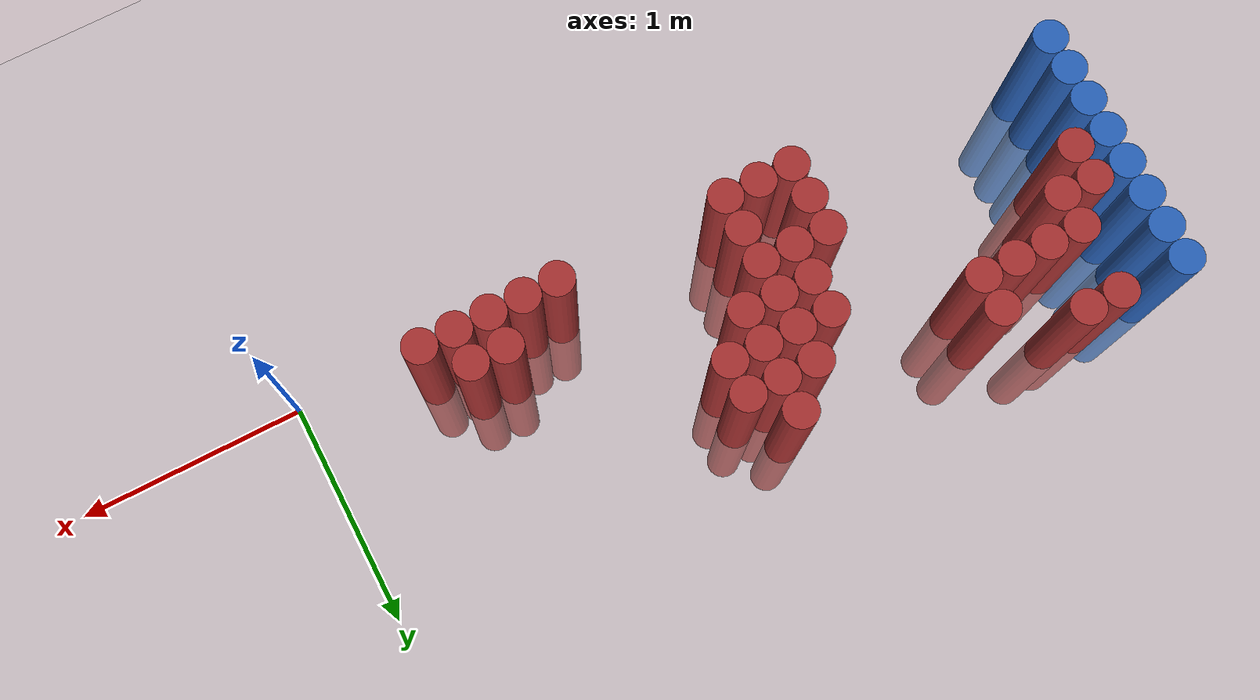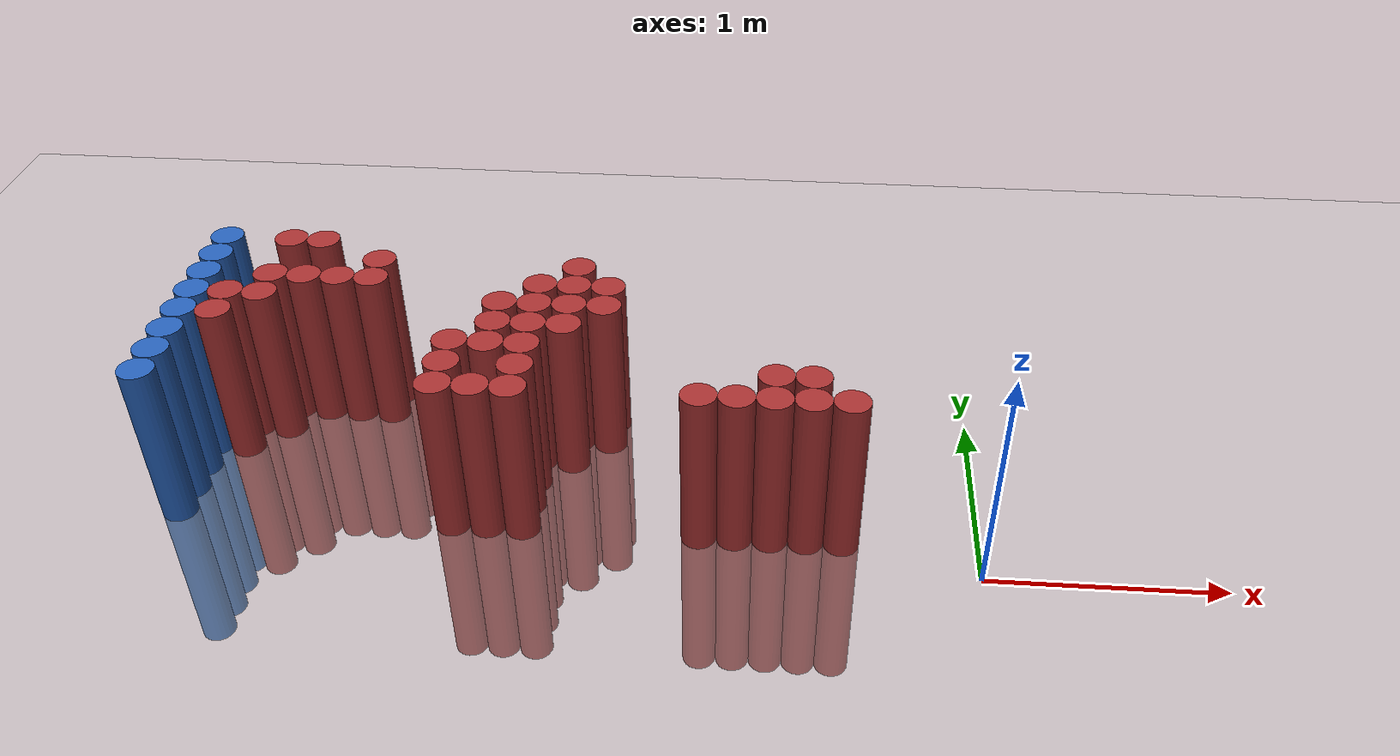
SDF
<sdf version="1.6">
 <world name="default">
  <model name="ground_plane">
   <static>1</static>
   <link name="link">
    <collision name="collision">
     <geometry><plane><normal>0 0 1</normal><size>100 100</size></plane></geometry>
     <surface><friction><ode><mu>100</mu><mu2>50</mu2></ode></friction></surface>
    </collision>
    <visual name="visual">
     <cast_shadows>0</cast_shadows>
     <geometry><plane><normal>0 0 1</normal><size>100 100</size></plane></geometry>
     <material>
      <script><uri>file://media/materials/scripts/gazebo.material</uri><name>Gazebo/Grey</name></script>
     </material>
    </visual>
   </link>
  </model>
  <model name="unit_cylinder_119">
   <static>1</static>
   <pose>-3.425000 0.325000 0.000000 0.000000 0.000000 0.000000</pose>
   <link name="link">
    <inertial>
     <mass>1</mass>
     <inertia><ixx>0.145833</ixx><ixy>0</ixy><ixz>0</ixz><iyy>0.145833</iyy><iyz>0</iyz><izz>0.125</izz></inertia>
    </inertial>
    <collision name="collision">
     <geometry><cylinder><radius>0.075000</radius><length>1.5</length></cylinder></geometry>
    </collision>
    <visual name="visual">
     <geometry><cylinder><radius>0.075000</radius><length>1.5</length></cylinder></geometry>
     <material>
      <ambient>0.152000 0.379000 0.720000 1</ambient>
      <diffuse>0.152000 0.379000 0.720000 1</diffuse>
     </material>
     <material>
      <script><name>Gazebo/Grey</name><uri>file://media/materials/scripts/gazebo.material</uri></script>
     </material>
    </visual>
   </link>
  </model>
  <model name="unit_cylinder_121">
   <static>1</static>
   <pose>-3.425000 0.475000 0.000000 0.000000 0.000000 0.000000</pose>
   <link name="link">
    <inertial>
     <mass>1</mass>
     <inertia><ixx>0.145833</ixx><ixy>0</ixy><ixz>0</ixz><iyy>0.145833</iyy><iyz>0</iyz><izz>0.125</izz></inertia>
    </inertial>
    <collision name="collision">
     <geometry><cylinder><radius>0.075000</radius><length>1.5</length></cylinder></geometry>
    </collision>
    <visual name="visual">
     <geometry><cylinder><radius>0.075000</radius><length>1.5</length></cylinder></geometry>
     <material>
      <ambient>0.152000 0.379000 0.720000 1</ambient>
      <diffuse>0.152000 0.379000 0.720000 1</diffuse>
     </material>
     <material>
      <script><name>Gazebo/Grey</name><uri>file://media/materials/scripts/gazebo.material</uri></script>
     </material>
    </visual>
   </link>
  </model>
  <model name="unit_cylinder_123">
   <static>1</static>
   <pose>-3.425000 0.625000 0.000000 0.000000 0.000000 0.000000</pose>
   <link name="link">
    <inertial>
     <mass>1</mass>
     <inertia><ixx>0.145833</ixx><ixy>0</ixy><ixz>0</ixz><iyy>0.145833</iyy><iyz>0</iyz><izz>0.125</izz></inertia>
    </inertial>
    <collision name="collision">
     <geometry><cylinder><radius>0.075000</radius><length>1.5</length></cylinder></geometry>
    </collision>
    <visual name="visual">
     <geometry><cylinder><radius>0.075000</radius><length>1.5</length></cylinder></geometry>
     <material>
      <ambient>0.152000 0.379000 0.720000 1</ambient>
      <diffuse>0.152000 0.379000 0.720000 1</diffuse>
     </material>
     <material>
      <script><name>Gazebo/Grey</name><uri>file://media/materials/scripts/gazebo.material</uri></script>
     </material>
    </visual>
   </link>
  </model>
  <model name="unit_cylinder_125">
   <static>1</static>
   <pose>-3.425000 0.775000 0.000000 0.000000 0.000000 0.000000</pose>
   <link name="link">
    <inertial>
     <mass>1</mass>
     <inertia><ixx>0.145833</ixx><ixy>0</ixy><ixz>0</ixz><iyy>0.145833</iyy><iyz>0</iyz><izz>0.125</izz></inertia>
    </inertial>
    <collision name="collision">
     <geometry><cylinder><radius>0.075000</radius><length>1.5</length></cylinder></geometry>
    </collision>
    <visual name="visual">
     <geometry><cylinder><radius>0.075000</radius><length>1.5</length></cylinder></geometry>
     <material>
      <ambient>0.152000 0.379000 0.720000 1</ambient>
      <diffuse>0.152000 0.379000 0.720000 1</diffuse>
     </material>
     <material>
      <script><name>Gazebo/Grey</name><uri>file://media/materials/scripts/gazebo.material</uri></script>
     </material>
    </visual>
   </link>
  </model>
  <model name="unit_cylinder_127">
   <static>1</static>
   <pose>-3.425000 0.925000 0.000000 0.000000 0.000000 0.000000</pose>
   <link name="link">
    <inertial>
     <mass>1</mass>
     <inertia><ixx>0.145833</ixx><ixy>0</ixy><ixz>0</ixz><iyy>0.145833</iyy><iyz>0</iyz><izz>0.125</izz></inertia>
    </inertial>
    <collision name="collision">
     <geometry><cylinder><radius>0.075000</radius><length>1.5</length></cylinder></geometry>
    </collision>
    <visual name="visual">
     <geometry><cylinder><radius>0.075000</radius><length>1.5</length></cylinder></geometry>
     <material>
      <ambient>0.152000 0.379000 0.720000 1</ambient>
      <diffuse>0.152000 0.379000 0.720000 1</diffuse>
     </material>
     <material>
      <script><name>Gazebo/Grey</name><uri>file://media/materials/scripts/gazebo.material</uri></script>
     </material>
    </visual>
   </link>
  </model>
  <model name="unit_cylinder_129">
   <static>1</static>
   <pose>-3.425000 1.075000 0.000000 0.000000 0.000000 0.000000</pose>
   <link name="link">
    <inertial>
     <mass>1</mass>
     <inertia><ixx>0.145833</ixx><ixy>0</ixy><ixz>0</ixz><iyy>0.145833</iyy><iyz>0</iyz><izz>0.125</izz></inertia>
    </inertial>
    <collision name="collision">
     <geometry><cylinder><radius>0.075000</radius><length>1.5</length></cylinder></geometry>
    </collision>
    <visual name="visual">
     <geometry><cylinder><radius>0.075000</radius><length>1.5</length></cylinder></geometry>
     <material>
      <ambient>0.152000 0.379000 0.720000 1</ambient>
      <diffuse>0.152000 0.379000 0.720000 1</diffuse>
     </material>
     <material>
      <script><name>Gazebo/Grey</name><uri>file://media/materials/scripts/gazebo.material</uri></script>
     </material>
    </visual>
   </link>
  </model>
  <model name="unit_cylinder_131">
   <static>1</static>
   <pose>-3.425000 1.225000 0.000000 0.000000 0.000000 0.000000</pose>
   <link name="link">
    <inertial>
     <mass>1</mass>
     <inertia><ixx>0.145833</ixx><ixy>0</ixy><ixz>0</ixz><iyy>0.145833</iyy><iyz>0</iyz><izz>0.125</izz></inertia>
    </inertial>
    <collision name="collision">
     <geometry><cylinder><radius>0.075000</radius><length>1.5</length></cylinder></geometry>
    </collision>
    <visual name="visual">
     <geometry><cylinder><radius>0.075000</radius><length>1.5</length></cylinder></geometry>
     <material>
      <ambient>0.152000 0.379000 0.720000 1</ambient>
      <diffuse>0.152000 0.379000 0.720000 1</diffuse>
     </material>
     <material>
      <script><name>Gazebo/Grey</name><uri>file://media/materials/scripts/gazebo.material</uri></script>
     </material>
    </visual>
   </link>
  </model>
  <model name="unit_cylinder_222">
   <static>1</static>
   <pose>-3.425000 0.175000 0.000000 0.000000 0.000000 0.000000</pose>
   <link name="link">
    <inertial>
     <mass>1</mass>
     <inertia><ixx>0.145833</ixx><ixy>0</ixy><ixz>0</ixz><iyy>0.145833</iyy><iyz>0</iyz><izz>0.125</izz></inertia>
    </inertial>
    <collision name="collision">
     <geometry><cylinder><radius>0.075000</radius><length>1.5</length></cylinder></geometry>
    </collision>
    <visual name="visual">
     <geometry><cylinder><radius>0.075000</radius><length>1.5</length></cylinder></geometry>
     <material>
      <ambient>0.152000 0.379000 0.720000 1</ambient>
      <diffuse>0.152000 0.379000 0.720000 1</diffuse>
     </material>
     <material>
      <script><name>Gazebo/Grey</name><uri>file://media/materials/scripts/gazebo.material</uri></script>
     </material>
    </visual>
   </link>
  </model>
  <model name="unit_cylinder_223">
   <static>1</static>
   <pose>-3.425000 0.325000 0.000000 0.000000 0.000000 0.000000</pose>
   <link name="link">
    <inertial>
     <mass>1</mass>
     <inertia><ixx>0.145833</ixx><ixy>0</ixy><ixz>0</ixz><iyy>0.145833</iyy><iyz>0</iyz><izz>0.125</izz></inertia>
    </inertial>
    <collision name="collision">
     <geometry><cylinder><radius>0.075000</radius><length>1.5</length></cylinder></geometry>
    </collision>
    <visual name="visual">
     <geometry><cylinder><radius>0.075000</radius><length>1.5</length></cylinder></geometry>
     <material>
      <ambient>0.152000 0.379000 0.720000 1</ambient>
      <diffuse>0.152000 0.379000 0.720000 1</diffuse>
     </material>
     <material>
      <script><name>Gazebo/Grey</name><uri>file://media/materials/scripts/gazebo.material</uri></script>
     </material>
    </visual>
   </link>
  </model>
  <model name="unit_cylinder_224">
   <static>1</static>
   <pose>-3.425000 0.475000 0.000000 0.000000 0.000000 0.000000</pose>
   <link name="link">
    <inertial>
     <mass>1</mass>
     <inertia><ixx>0.145833</ixx><ixy>0</ixy><ixz>0</ixz><iyy>0.145833</iyy><iyz>0</iyz><izz>0.125</izz></inertia>
    </inertial>
    <collision name="collision">
     <geometry><cylinder><radius>0.075000</radius><length>1.5</length></cylinder></geometry>
    </collision>
    <visual name="visual">
     <geometry><cylinder><radius>0.075000</radius><length>1.5</length></cylinder></geometry>
     <material>
      <ambient>0.152000 0.379000 0.720000 1</ambient>
      <diffuse>0.152000 0.379000 0.720000 1</diffuse>
     </material>
     <material>
      <script><name>Gazebo/Grey</name><uri>file://media/materials/scripts/gazebo.material</uri></script>
     </material>
    </visual>
   </link>
  </model>
  <model name="unit_cylinder_225">
   <static>1</static>
   <pose>-3.425000 0.625000 0.000000 0.000000 0.000000 0.000000</pose>
   <link name="link">
    <inertial>
     <mass>1</mass>
     <inertia><ixx>0.145833</ixx><ixy>0</ixy><ixz>0</ixz><iyy>0.145833</iyy><iyz>0</iyz><izz>0.125</izz></inertia>
    </inertial>
    <collision name="collision">
     <geometry><cylinder><radius>0.075000</radius><length>1.5</length></cylinder></geometry>
    </collision>
    <visual name="visual">
     <geometry><cylinder><radius>0.075000</radius><length>1.5</length></cylinder></geometry>
     <material>
      <ambient>0.152000 0.379000 0.720000 1</ambient>
      <diffuse>0.152000 0.379000 0.720000 1</diffuse>
     </material>
     <material>
      <script><name>Gazebo/Grey</name><uri>file://media/materials/scripts/gazebo.material</uri></script>
     </material>
    </visual>
   </link>
  </model>
  <model name="unit_cylinder_226">
   <static>1</static>
   <pose>-3.425000 0.775000 0.000000 0.000000 0.000000 0.000000</pose>
   <link name="link">
    <inertial>
     <mass>1</mass>
     <inertia><ixx>0.145833</ixx><ixy>0</ixy><ixz>0</ixz><iyy>0.145833</iyy><iyz>0</iyz><izz>0.125</izz></inertia>
    </inertial>
    <collision name="collision">
     <geometry><cylinder><radius>0.075000</radius><length>1.5</length></cylinder></geometry>
    </collision>
    <visual name="visual">
     <geometry><cylinder><radius>0.075000</radius><length>1.5</length></cylinder></geometry>
     <material>
      <ambient>0.152000 0.379000 0.720000 1</ambient>
      <diffuse>0.152000 0.379000 0.720000 1</diffuse>
     </material>
     <material>
      <script><name>Gazebo/Grey</name><uri>file://media/materials/scripts/gazebo.material</uri></script>
     </material>
    </visual>
   </link>
  </model>
  <model name="unit_cylinder_227">
   <static>1</static>
   <pose>-3.425000 0.925000 0.000000 0.000000 0.000000 0.000000</pose>
   <link name="link">
    <inertial>
     <mass>1</mass>
     <inertia><ixx>0.145833</ixx><ixy>0</ixy><ixz>0</ixz><iyy>0.145833</iyy><iyz>0</iyz><izz>0.125</izz></inertia>
    </inertial>
    <collision name="collision">
     <geometry><cylinder><radius>0.075000</radius><length>1.5</length></cylinder></geometry>
    </collision>
    <visual name="visual">
     <geometry><cylinder><radius>0.075000</radius><length>1.5</length></cylinder></geometry>
     <material>
      <ambient>0.152000 0.379000 0.720000 1</ambient>
      <diffuse>0.152000 0.379000 0.720000 1</diffuse>
     </material>
     <material>
      <script><name>Gazebo/Grey</name><uri>file://media/materials/scripts/gazebo.material</uri></script>
     </material>
    </visual>
   </link>
  </model>
  <model name="unit_cylinder_228">
   <static>1</static>
   <pose>-3.425000 1.075000 0.000000 0.000000 0.000000 0.000000</pose>
   <link name="link">
    <inertial>
     <mass>1</mass>
     <inertia><ixx>0.145833</ixx><ixy>0</ixy><ixz>0</ixz><iyy>0.145833</iyy><iyz>0</iyz><izz>0.125</izz></inertia>
    </inertial>
    <collision name="collision">
     <geometry><cylinder><radius>0.075000</radius><length>1.5</length></cylinder></geometry>
    </collision>
    <visual name="visual">
     <geometry><cylinder><radius>0.075000</radius><length>1.5</length></cylinder></geometry>
     <material>
      <ambient>0.152000 0.379000 0.720000 1</ambient>
      <diffuse>0.152000 0.379000 0.720000 1</diffuse>
     </material>
     <material>
      <script><name>Gazebo/Grey</name><uri>file://media/materials/scripts/gazebo.material</uri></script>
     </material>
    </visual>
   </link>
  </model>
  <model name="unit_cylinder_229">
   <static>1</static>
   <pose>-3.425000 1.225000 0.000000 0.000000 0.000000 0.000000</pose>
   <link name="link">
    <inertial>
     <mass>1</mass>
     <inertia><ixx>0.145833</ixx><ixy>0</ixy><ixz>0</ixz><iyy>0.145833</iyy><iyz>0</iyz><izz>0.125</izz></inertia>
    </inertial>
    <collision name="collision">
     <geometry><cylinder><radius>0.075000</radius><length>1.5</length></cylinder></geometry>
    </collision>
    <visual name="visual">
     <geometry><cylinder><radius>0.075000</radius><length>1.5</length></cylinder></geometry>
     <material>
      <ambient>0.152000 0.379000 0.720000 1</ambient>
      <diffuse>0.152000 0.379000 0.720000 1</diffuse>
     </material>
     <material>
      <script><name>Gazebo/Grey</name><uri>file://media/materials/scripts/gazebo.material</uri></script>
     </material>
    </visual>
   </link>
  </model>
  <model name="unit_cylinder_263">
   <static>1</static>
   <pose>-3.275000 0.625000 0.000000 0.000000 0.000000 0.000000</pose>
   <link name="link">
    <inertial>
     <mass>1</mass>
     <inertia><ixx>0.145833</ixx><ixy>0</ixy><ixz>0</ixz><iyy>0.145833</iyy><iyz>0</iyz><izz>0.125</izz></inertia>
    </inertial>
    <collision name="collision">
     <geometry><cylinder><radius>0.075000</radius><length>1.5</length></cylinder></geometry>
    </collision>
    <visual name="visual">
     <geometry><cylinder><radius>0.075000</radius><length>1.5</length></cylinder></geometry>
     <material>
      <ambient>0.648000 0.192000 0.192000 1</ambient>
      <diffuse>0.648000 0.192000 0.192000 1</diffuse>
     </material>
     <material>
      <script><name>Gazebo/Grey</name><uri>file://media/materials/scripts/gazebo.material</uri></script>
     </material>
    </visual>
   </link>
  </model>
  <model name="unit_cylinder_264">
   <static>1</static>
   <pose>-3.275000 0.775000 0.000000 0.000000 0.000000 0.000000</pose>
   <link name="link">
    <inertial>
     <mass>1</mass>
     <inertia><ixx>0.145833</ixx><ixy>0</ixy><ixz>0</ixz><iyy>0.145833</iyy><iyz>0</iyz><izz>0.125</izz></inertia>
    </inertial>
    <collision name="collision">
     <geometry><cylinder><radius>0.075000</radius><length>1.5</length></cylinder></geometry>
    </collision>
    <visual name="visual">
     <geometry><cylinder><radius>0.075000</radius><length>1.5</length></cylinder></geometry>
     <material>
      <ambient>0.648000 0.192000 0.192000 1</ambient>
      <diffuse>0.648000 0.192000 0.192000 1</diffuse>
     </material>
     <material>
      <script><name>Gazebo/Grey</name><uri>file://media/materials/scripts/gazebo.material</uri></script>
     </material>
    </visual>
   </link>
  </model>
  <model name="unit_cylinder_280">
   <static>1</static>
   <pose>-3.125000 0.775000 0.000000 0.000000 0.000000 0.000000</pose>
   <link name="link">
    <inertial>
     <mass>1</mass>
     <inertia><ixx>0.145833</ixx><ixy>0</ixy><ixz>0</ixz><iyy>0.145833</iyy><iyz>0</iyz><izz>0.125</izz></inertia>
    </inertial>
    <collision name="collision">
     <geometry><cylinder><radius>0.075000</radius><length>1.5</length></cylinder></geometry>
    </collision>
    <visual name="visual">
     <geometry><cylinder><radius>0.075000</radius><length>1.5</length></cylinder></geometry>
     <material>
      <ambient>0.648000 0.192000 0.192000 1</ambient>
      <diffuse>0.648000 0.192000 0.192000 1</diffuse>
     </material>
     <material>
      <script><name>Gazebo/Grey</name><uri>file://media/materials/scripts/gazebo.material</uri></script>
     </material>
    </visual>
   </link>
  </model>
  <model name="unit_cylinder_281">
   <static>1</static>
   <pose>-3.125000 0.925000 0.000000 0.000000 0.000000 0.000000</pose>
   <link name="link">
    <inertial>
     <mass>1</mass>
     <inertia><ixx>0.145833</ixx><ixy>0</ixy><ixz>0</ixz><iyy>0.145833</iyy><iyz>0</iyz><izz>0.125</izz></inertia>
    </inertial>
    <collision name="collision">
     <geometry><cylinder><radius>0.075000</radius><length>1.5</length></cylinder></geometry>
    </collision>
    <visual name="visual">
     <geometry><cylinder><radius>0.075000</radius><length>1.5</length></cylinder></geometry>
     <material>
      <ambient>0.648000 0.192000 0.192000 1</ambient>
      <diffuse>0.648000 0.192000 0.192000 1</diffuse>
     </material>
     <material>
      <script><name>Gazebo/Grey</name><uri>file://media/materials/scripts/gazebo.material</uri></script>
     </material>
    </visual>
   </link>
  </model>
  <model name="unit_cylinder_282">
   <static>1</static>
   <pose>-3.125000 1.225000 0.000000 0.000000 0.000000 0.000000</pose>
   <link name="link">
    <inertial>
     <mass>1</mass>
     <inertia><ixx>0.145833</ixx><ixy>0</ixy><ixz>0</ixz><iyy>0.145833</iyy><iyz>0</iyz><izz>0.125</izz></inertia>
    </inertial>
    <collision name="collision">
     <geometry><cylinder><radius>0.075000</radius><length>1.5</length></cylinder></geometry>
    </collision>
    <visual name="visual">
     <geometry><cylinder><radius>0.075000</radius><length>1.5</length></cylinder></geometry>
     <material>
      <ambient>0.648000 0.192000 0.192000 1</ambient>
      <diffuse>0.648000 0.192000 0.192000 1</diffuse>
     </material>
     <material>
      <script><name>Gazebo/Grey</name><uri>file://media/materials/scripts/gazebo.material</uri></script>
     </material>
    </visual>
   </link>
  </model>
  <model name="unit_cylinder_291">
   <static>1</static>
   <pose>-2.975000 0.925000 0.000000 0.000000 0.000000 0.000000</pose>
   <link name="link">
    <inertial>
     <mass>1</mass>
     <inertia><ixx>0.145833</ixx><ixy>0</ixy><ixz>0</ixz><iyy>0.145833</iyy><iyz>0</iyz><izz>0.125</izz></inertia>
    </inertial>
    <collision name="collision">
     <geometry><cylinder><radius>0.075000</radius><length>1.5</length></cylinder></geometry>
    </collision>
    <visual name="visual">
     <geometry><cylinder><radius>0.075000</radius><length>1.5</length></cylinder></geometry>
     <material>
      <ambient>0.648000 0.192000 0.192000 1</ambient>
      <diffuse>0.648000 0.192000 0.192000 1</diffuse>
     </material>
     <material>
      <script><name>Gazebo/Grey</name><uri>file://media/materials/scripts/gazebo.material</uri></script>
     </material>
    </visual>
   </link>
  </model>
  <model name="unit_cylinder_292">
   <static>1</static>
   <pose>-2.975000 1.225000 0.000000 0.000000 0.000000 0.000000</pose>
   <link name="link">
    <inertial>
     <mass>1</mass>
     <inertia><ixx>0.145833</ixx><ixy>0</ixy><ixz>0</ixz><iyy>0.145833</iyy><iyz>0</iyz><izz>0.125</izz></inertia>
    </inertial>
    <collision name="collision">
     <geometry><cylinder><radius>0.075000</radius><length>1.5</length></cylinder></geometry>
    </collision>
    <visual name="visual">
     <geometry><cylinder><radius>0.075000</radius><length>1.5</length></cylinder></geometry>
     <material>
      <ambient>0.648000 0.192000 0.192000 1</ambient>
      <diffuse>0.648000 0.192000 0.192000 1</diffuse>
     </material>
     <material>
      <script><name>Gazebo/Grey</name><uri>file://media/materials/scripts/gazebo.material</uri></script>
     </material>
    </visual>
   </link>
  </model>
  <model name="unit_cylinder_301">
   <static>1</static>
   <pose>-2.825000 0.925000 0.000000 0.000000 0.000000 0.000000</pose>
   <link name="link">
    <inertial>
     <mass>1</mass>
     <inertia><ixx>0.145833</ixx><ixy>0</ixy><ixz>0</ixz><iyy>0.145833</iyy><iyz>0</iyz><izz>0.125</izz></inertia>
    </inertial>
    <collision name="collision">
     <geometry><cylinder><radius>0.075000</radius><length>1.5</length></cylinder></geometry>
    </collision>
    <visual name="visual">
     <geometry><cylinder><radius>0.075000</radius><length>1.5</length></cylinder></geometry>
     <material>
      <ambient>0.648000 0.192000 0.192000 1</ambient>
      <diffuse>0.648000 0.192000 0.192000 1</diffuse>
     </material>
     <material>
      <script><name>Gazebo/Grey</name><uri>file://media/materials/scripts/gazebo.material</uri></script>
     </material>
    </visual>
   </link>
  </model>
  <model name="unit_cylinder_308">
   <static>1</static>
   <pose>-2.675000 0.925000 0.000000 0.000000 0.000000 0.000000</pose>
   <link name="link">
    <inertial>
     <mass>1</mass>
     <inertia><ixx>0.145833</ixx><ixy>0</ixy><ixz>0</ixz><iyy>0.145833</iyy><iyz>0</iyz><izz>0.125</izz></inertia>
    </inertial>
    <collision name="collision">
     <geometry><cylinder><radius>0.075000</radius><length>1.5</length></cylinder></geometry>
    </collision>
    <visual name="visual">
     <geometry><cylinder><radius>0.075000</radius><length>1.5</length></cylinder></geometry>
     <material>
      <ambient>0.648000 0.192000 0.192000 1</ambient>
      <diffuse>0.648000 0.192000 0.192000 1</diffuse>
     </material>
     <material>
      <script><name>Gazebo/Grey</name><uri>file://media/materials/scripts/gazebo.material</uri></script>
     </material>
    </visual>
   </link>
  </model>
  <model name="unit_cylinder_309">
   <static>1</static>
   <pose>-2.675000 1.075000 0.000000 0.000000 0.000000 0.000000</pose>
   <link name="link">
    <inertial>
     <mass>1</mass>
     <inertia><ixx>0.145833</ixx><ixy>0</ixy><ixz>0</ixz><iyy>0.145833</iyy><iyz>0</iyz><izz>0.125</izz></inertia>
    </inertial>
    <collision name="collision">
     <geometry><cylinder><radius>0.075000</radius><length>1.5</length></cylinder></geometry>
    </collision>
    <visual name="visual">
     <geometry><cylinder><radius>0.075000</radius><length>1.5</length></cylinder></geometry>
     <material>
      <ambient>0.648000 0.192000 0.192000 1</ambient>
      <diffuse>0.648000 0.192000 0.192000 1</diffuse>
     </material>
     <material>
      <script><name>Gazebo/Grey</name><uri>file://media/materials/scripts/gazebo.material</uri></script>
     </material>
    </visual>
   </link>
  </model>
  <model name="unit_cylinder_322">
   <static>1</static>
   <pose>-2.225000 0.175000 0.000000 0.000000 0.000000 0.000000</pose>
   <link name="link">
    <inertial>
     <mass>1</mass>
     <inertia><ixx>0.145833</ixx><ixy>0</ixy><ixz>0</ixz><iyy>0.145833</iyy><iyz>0</iyz><izz>0.125</izz></inertia>
    </inertial>
    <collision name="collision">
     <geometry><cylinder><radius>0.075000</radius><length>1.5</length></cylinder></geometry>
    </collision>
    <visual name="visual">
     <geometry><cylinder><radius>0.075000</radius><length>1.5</length></cylinder></geometry>
     <material>
      <ambient>0.648000 0.192000 0.192000 1</ambient>
      <diffuse>0.648000 0.192000 0.192000 1</diffuse>
     </material>
     <material>
      <script><name>Gazebo/Grey</name><uri>file://media/materials/scripts/gazebo.material</uri></script>
     </material>
    </visual>
   </link>
  </model>
  <model name="unit_cylinder_323">
   <static>1</static>
   <pose>-2.225000 0.325000 0.000000 0.000000 0.000000 0.000000</pose>
   <link name="link">
    <inertial>
     <mass>1</mass>
     <inertia><ixx>0.145833</ixx><ixy>0</ixy><ixz>0</ixz><iyy>0.145833</iyy><iyz>0</iyz><izz>0.125</izz></inertia>
    </inertial>
    <collision name="collision">
     <geometry><cylinder><radius>0.075000</radius><length>1.5</length></cylinder></geometry>
    </collision>
    <visual name="visual">
     <geometry><cylinder><radius>0.075000</radius><length>1.5</length></cylinder></geometry>
     <material>
      <ambient>0.648000 0.192000 0.192000 1</ambient>
      <diffuse>0.648000 0.192000 0.192000 1</diffuse>
     </material>
     <material>
      <script><name>Gazebo/Grey</name><uri>file://media/materials/scripts/gazebo.material</uri></script>
     </material>
    </visual>
   </link>
  </model>
  <model name="unit_cylinder_324">
   <static>1</static>
   <pose>-2.225000 0.475000 0.000000 0.000000 0.000000 0.000000</pose>
   <link name="link">
    <inertial>
     <mass>1</mass>
     <inertia><ixx>0.145833</ixx><ixy>0</ixy><ixz>0</ixz><iyy>0.145833</iyy><iyz>0</iyz><izz>0.125</izz></inertia>
    </inertial>
    <collision name="collision">
     <geometry><cylinder><radius>0.075000</radius><length>1.5</length></cylinder></geometry>
    </collision>
    <visual name="visual">
     <geometry><cylinder><radius>0.075000</radius><length>1.5</length></cylinder></geometry>
     <material>
      <ambient>0.648000 0.192000 0.192000 1</ambient>
      <diffuse>0.648000 0.192000 0.192000 1</diffuse>
     </material>
     <material>
      <script><name>Gazebo/Grey</name><uri>file://media/materials/scripts/gazebo.material</uri></script>
     </material>
    </visual>
   </link>
  </model>
  <model name="unit_cylinder_329">
   <static>1</static>
   <pose>-2.075000 0.175000 0.000000 0.000000 0.000000 0.000000</pose>
   <link name="link">
    <inertial>
     <mass>1</mass>
     <inertia><ixx>0.145833</ixx><ixy>0</ixy><ixz>0</ixz><iyy>0.145833</iyy><iyz>0</iyz><izz>0.125</izz></inertia>
    </inertial>
    <collision name="collision">
     <geometry><cylinder><radius>0.075000</radius><length>1.5</length></cylinder></geometry>
    </collision>
    <visual name="visual">
     <geometry><cylinder><radius>0.075000</radius><length>1.5</length></cylinder></geometry>
     <material>
      <ambient>0.648000 0.192000 0.192000 1</ambient>
      <diffuse>0.648000 0.192000 0.192000 1</diffuse>
     </material>
     <material>
      <script><name>Gazebo/Grey</name><uri>file://media/materials/scripts/gazebo.material</uri></script>
     </material>
    </visual>
   </link>
  </model>
  <model name="unit_cylinder_330">
   <static>1</static>
   <pose>-2.075000 0.475000 0.000000 0.000000 0.000000 0.000000</pose>
   <link name="link">
    <inertial>
     <mass>1</mass>
     <inertia><ixx>0.145833</ixx><ixy>0</ixy><ixz>0</ixz><iyy>0.145833</iyy><iyz>0</iyz><izz>0.125</izz></inertia>
    </inertial>
    <collision name="collision">
     <geometry><cylinder><radius>0.075000</radius><length>1.5</length></cylinder></geometry>
    </collision>
    <visual name="visual">
     <geometry><cylinder><radius>0.075000</radius><length>1.5</length></cylinder></geometry>
     <material>
      <ambient>0.648000 0.192000 0.192000 1</ambient>
      <diffuse>0.648000 0.192000 0.192000 1</diffuse>
     </material>
     <material>
      <script><name>Gazebo/Grey</name><uri>file://media/materials/scripts/gazebo.material</uri></script>
     </material>
    </visual>
   </link>
  </model>
  <model name="unit_cylinder_331">
   <static>1</static>
   <pose>-2.075000 0.625000 0.000000 0.000000 0.000000 0.000000</pose>
   <link name="link">
    <inertial>
     <mass>1</mass>
     <inertia><ixx>0.145833</ixx><ixy>0</ixy><ixz>0</ixz><iyy>0.145833</iyy><iyz>0</iyz><izz>0.125</izz></inertia>
    </inertial>
    <collision name="collision">
     <geometry><cylinder><radius>0.075000</radius><length>1.5</length></cylinder></geometry>
    </collision>
    <visual name="visual">
     <geometry><cylinder><radius>0.075000</radius><length>1.5</length></cylinder></geometry>
     <material>
      <ambient>0.648000 0.192000 0.192000 1</ambient>
      <diffuse>0.648000 0.192000 0.192000 1</diffuse>
     </material>
     <material>
      <script><name>Gazebo/Grey</name><uri>file://media/materials/scripts/gazebo.material</uri></script>
     </material>
    </visual>
   </link>
  </model>
  <model name="unit_cylinder_332">
   <static>1</static>
   <pose>-2.075000 0.775000 0.000000 0.000000 0.000000 0.000000</pose>
   <link name="link">
    <inertial>
     <mass>1</mass>
     <inertia><ixx>0.145833</ixx><ixy>0</ixy><ixz>0</ixz><iyy>0.145833</iyy><iyz>0</iyz><izz>0.125</izz></inertia>
    </inertial>
    <collision name="collision">
     <geometry><cylinder><radius>0.075000</radius><length>1.5</length></cylinder></geometry>
    </collision>
    <visual name="visual">
     <geometry><cylinder><radius>0.075000</radius><length>1.5</length></cylinder></geometry>
     <material>
      <ambient>0.648000 0.192000 0.192000 1</ambient>
      <diffuse>0.648000 0.192000 0.192000 1</diffuse>
     </material>
     <material>
      <script><name>Gazebo/Grey</name><uri>file://media/materials/scripts/gazebo.material</uri></script>
     </material>
    </visual>
   </link>
  </model>
  <model name="unit_cylinder_334">
   <static>1</static>
   <pose>-1.925000 0.175000 0.000000 0.000000 0.000000 0.000000</pose>
   <link name="link">
    <inertial>
     <mass>1</mass>
     <inertia><ixx>0.145833</ixx><ixy>0</ixy><ixz>0</ixz><iyy>0.145833</iyy><iyz>0</iyz><izz>0.125</izz></inertia>
    </inertial>
    <collision name="collision">
     <geometry><cylinder><radius>0.075000</radius><length>1.5</length></cylinder></geometry>
    </collision>
    <visual name="visual">
     <geometry><cylinder><radius>0.075000</radius><length>1.5</length></cylinder></geometry>
     <material>
      <ambient>0.648000 0.192000 0.192000 1</ambient>
      <diffuse>0.648000 0.192000 0.192000 1</diffuse>
     </material>
     <material>
      <script><name>Gazebo/Grey</name><uri>file://media/materials/scripts/gazebo.material</uri></script>
     </material>
    </visual>
   </link>
  </model>
  <model name="unit_cylinder_335">
   <static>1</static>
   <pose>-1.925000 0.325000 0.000000 0.000000 0.000000 0.000000</pose>
   <link name="link">
    <inertial>
     <mass>1</mass>
     <inertia><ixx>0.145833</ixx><ixy>0</ixy><ixz>0</ixz><iyy>0.145833</iyy><iyz>0</iyz><izz>0.125</izz></inertia>
    </inertial>
    <collision name="collision">
     <geometry><cylinder><radius>0.075000</radius><length>1.5</length></cylinder></geometry>
    </collision>
    <visual name="visual">
     <geometry><cylinder><radius>0.075000</radius><length>1.5</length></cylinder></geometry>
     <material>
      <ambient>0.648000 0.192000 0.192000 1</ambient>
      <diffuse>0.648000 0.192000 0.192000 1</diffuse>
     </material>
     <material>
      <script><name>Gazebo/Grey</name><uri>file://media/materials/scripts/gazebo.material</uri></script>
     </material>
    </visual>
   </link>
  </model>
  <model name="unit_cylinder_336">
   <static>1</static>
   <pose>-1.925000 0.475000 0.000000 0.000000 0.000000 0.000000</pose>
   <link name="link">
    <inertial>
     <mass>1</mass>
     <inertia><ixx>0.145833</ixx><ixy>0</ixy><ixz>0</ixz><iyy>0.145833</iyy><iyz>0</iyz><izz>0.125</izz></inertia>
    </inertial>
    <collision name="collision">
     <geometry><cylinder><radius>0.075000</radius><length>1.5</length></cylinder></geometry>
    </collision>
    <visual name="visual">
     <geometry><cylinder><radius>0.075000</radius><length>1.5</length></cylinder></geometry>
     <material>
      <ambient>0.648000 0.192000 0.192000 1</ambient>
      <diffuse>0.648000 0.192000 0.192000 1</diffuse>
     </material>
     <material>
      <script><name>Gazebo/Grey</name><uri>file://media/materials/scripts/gazebo.material</uri></script>
     </material>
    </visual>
   </link>
  </model>
  <model name="unit_cylinder_337">
   <static>1</static>
   <pose>-1.925000 0.625000 0.000000 0.000000 0.000000 0.000000</pose>
   <link name="link">
    <inertial>
     <mass>1</mass>
     <inertia><ixx>0.145833</ixx><ixy>0</ixy><ixz>0</ixz><iyy>0.145833</iyy><iyz>0</iyz><izz>0.125</izz></inertia>
    </inertial>
    <collision name="collision">
     <geometry><cylinder><radius>0.075000</radius><length>1.5</length></cylinder></geometry>
    </collision>
    <visual name="visual">
     <geometry><cylinder><radius>0.075000</radius><length>1.5</length></cylinder></geometry>
     <material>
      <ambient>0.648000 0.192000 0.192000 1</ambient>
      <diffuse>0.648000 0.192000 0.192000 1</diffuse>
     </material>
     <material>
      <script><name>Gazebo/Grey</name><uri>file://media/materials/scripts/gazebo.material</uri></script>
     </material>
    </visual>
   </link>
  </model>
  <model name="unit_cylinder_338">
   <static>1</static>
   <pose>-1.925000 0.775000 0.000000 0.000000 0.000000 0.000000</pose>
   <link name="link">
    <inertial>
     <mass>1</mass>
     <inertia><ixx>0.145833</ixx><ixy>0</ixy><ixz>0</ixz><iyy>0.145833</iyy><iyz>0</iyz><izz>0.125</izz></inertia>
    </inertial>
    <collision name="collision">
     <geometry><cylinder><radius>0.075000</radius><length>1.5</length></cylinder></geometry>
    </collision>
    <visual name="visual">
     <geometry><cylinder><radius>0.075000</radius><length>1.5</length></cylinder></geometry>
     <material>
      <ambient>0.648000 0.192000 0.192000 1</ambient>
      <diffuse>0.648000 0.192000 0.192000 1</diffuse>
     </material>
     <material>
      <script><name>Gazebo/Grey</name><uri>file://media/materials/scripts/gazebo.material</uri></script>
     </material>
    </visual>
   </link>
  </model>
  <model name="unit_cylinder_339">
   <static>1</static>
   <pose>-1.925000 0.925000 0.000000 0.000000 0.000000 0.000000</pose>
   <link name="link">
    <inertial>
     <mass>1</mass>
     <inertia><ixx>0.145833</ixx><ixy>0</ixy><ixz>0</ixz><iyy>0.145833</iyy><iyz>0</iyz><izz>0.125</izz></inertia>
    </inertial>
    <collision name="collision">
     <geometry><cylinder><radius>0.075000</radius><length>1.5</length></cylinder></geometry>
    </collision>
    <visual name="visual">
     <geometry><cylinder><radius>0.075000</radius><length>1.5</length></cylinder></geometry>
     <material>
      <ambient>0.648000 0.192000 0.192000 1</ambient>
      <diffuse>0.648000 0.192000 0.192000 1</diffuse>
     </material>
     <material>
      <script><name>Gazebo/Grey</name><uri>file://media/materials/scripts/gazebo.material</uri></script>
     </material>
    </visual>
   </link>
  </model>
  <model name="unit_cylinder_347">
   <static>1</static>
   <pose>-1.775000 0.625000 0.000000 0.000000 0.000000 0.000000</pose>
   <link name="link">
    <inertial>
     <mass>1</mass>
     <inertia><ixx>0.145833</ixx><ixy>0</ixy><ixz>0</ixz><iyy>0.145833</iyy><iyz>0</iyz><izz>0.125</izz></inertia>
    </inertial>
    <collision name="collision">
     <geometry><cylinder><radius>0.075000</radius><length>1.5</length></cylinder></geometry>
    </collision>
    <visual name="visual">
     <geometry><cylinder><radius>0.075000</radius><length>1.5</length></cylinder></geometry>
     <material>
      <ambient>0.648000 0.192000 0.192000 1</ambient>
      <diffuse>0.648000 0.192000 0.192000 1</diffuse>
     </material>
     <material>
      <script><name>Gazebo/Grey</name><uri>file://media/materials/scripts/gazebo.material</uri></script>
     </material>
    </visual>
   </link>
  </model>
  <model name="unit_cylinder_348">
   <static>1</static>
   <pose>-1.775000 0.775000 0.000000 0.000000 0.000000 0.000000</pose>
   <link name="link">
    <inertial>
     <mass>1</mass>
     <inertia><ixx>0.145833</ixx><ixy>0</ixy><ixz>0</ixz><iyy>0.145833</iyy><iyz>0</iyz><izz>0.125</izz></inertia>
    </inertial>
    <collision name="collision">
     <geometry><cylinder><radius>0.075000</radius><length>1.5</length></cylinder></geometry>
    </collision>
    <visual name="visual">
     <geometry><cylinder><radius>0.075000</radius><length>1.5</length></cylinder></geometry>
     <material>
      <ambient>0.648000 0.192000 0.192000 1</ambient>
      <diffuse>0.648000 0.192000 0.192000 1</diffuse>
     </material>
     <material>
      <script><name>Gazebo/Grey</name><uri>file://media/materials/scripts/gazebo.material</uri></script>
     </material>
    </visual>
   </link>
  </model>
  <model name="unit_cylinder_349">
   <static>1</static>
   <pose>-1.775000 0.925000 0.000000 0.000000 0.000000 0.000000</pose>
   <link name="link">
    <inertial>
     <mass>1</mass>
     <inertia><ixx>0.145833</ixx><ixy>0</ixy><ixz>0</ixz><iyy>0.145833</iyy><iyz>0</iyz><izz>0.125</izz></inertia>
    </inertial>
    <collision name="collision">
     <geometry><cylinder><radius>0.075000</radius><length>1.5</length></cylinder></geometry>
    </collision>
    <visual name="visual">
     <geometry><cylinder><radius>0.075000</radius><length>1.5</length></cylinder></geometry>
     <material>
      <ambient>0.648000 0.192000 0.192000 1</ambient>
      <diffuse>0.648000 0.192000 0.192000 1</diffuse>
     </material>
     <material>
      <script><name>Gazebo/Grey</name><uri>file://media/materials/scripts/gazebo.material</uri></script>
     </material>
    </visual>
   </link>
  </model>
  <model name="unit_cylinder_350">
   <static>1</static>
   <pose>-1.775000 1.075000 0.000000 0.000000 0.000000 0.000000</pose>
   <link name="link">
    <inertial>
     <mass>1</mass>
     <inertia><ixx>0.145833</ixx><ixy>0</ixy><ixz>0</ixz><iyy>0.145833</iyy><iyz>0</iyz><izz>0.125</izz></inertia>
    </inertial>
    <collision name="collision">
     <geometry><cylinder><radius>0.075000</radius><length>1.5</length></cylinder></geometry>
    </collision>
    <visual name="visual">
     <geometry><cylinder><radius>0.075000</radius><length>1.5</length></cylinder></geometry>
     <material>
      <ambient>0.648000 0.192000 0.192000 1</ambient>
      <diffuse>0.648000 0.192000 0.192000 1</diffuse>
     </material>
     <material>
      <script><name>Gazebo/Grey</name><uri>file://media/materials/scripts/gazebo.material</uri></script>
     </material>
    </visual>
   </link>
  </model>
  <model name="unit_cylinder_355">
   <static>1</static>
   <pose>-1.625000 0.775000 0.000000 0.000000 0.000000 0.000000</pose>
   <link name="link">
    <inertial>
     <mass>1</mass>
     <inertia><ixx>0.145833</ixx><ixy>0</ixy><ixz>0</ixz><iyy>0.145833</iyy><iyz>0</iyz><izz>0.125</izz></inertia>
    </inertial>
    <collision name="collision">
     <geometry><cylinder><radius>0.075000</radius><length>1.5</length></cylinder></geometry>
    </collision>
    <visual name="visual">
     <geometry><cylinder><radius>0.075000</radius><length>1.5</length></cylinder></geometry>
     <material>
      <ambient>0.648000 0.192000 0.192000 1</ambient>
      <diffuse>0.648000 0.192000 0.192000 1</diffuse>
     </material>
     <material>
      <script><name>Gazebo/Grey</name><uri>file://media/materials/scripts/gazebo.material</uri></script>
     </material>
    </visual>
   </link>
  </model>
  <model name="unit_cylinder_356">
   <static>1</static>
   <pose>-1.625000 0.925000 0.000000 0.000000 0.000000 0.000000</pose>
   <link name="link">
    <inertial>
     <mass>1</mass>
     <inertia><ixx>0.145833</ixx><ixy>0</ixy><ixz>0</ixz><iyy>0.145833</iyy><iyz>0</iyz><izz>0.125</izz></inertia>
    </inertial>
    <collision name="collision">
     <geometry><cylinder><radius>0.075000</radius><length>1.5</length></cylinder></geometry>
    </collision>
    <visual name="visual">
     <geometry><cylinder><radius>0.075000</radius><length>1.5</length></cylinder></geometry>
     <material>
      <ambient>0.648000 0.192000 0.192000 1</ambient>
      <diffuse>0.648000 0.192000 0.192000 1</diffuse>
     </material>
     <material>
      <script><name>Gazebo/Grey</name><uri>file://media/materials/scripts/gazebo.material</uri></script>
     </material>
    </visual>
   </link>
  </model>
  <model name="unit_cylinder_364">
   <static>1</static>
   <pose>-1.175000 0.175000 0.000000 0.000000 0.000000 0.000000</pose>
   <link name="link">
    <inertial>
     <mass>1</mass>
     <inertia><ixx>0.145833</ixx><ixy>0</ixy><ixz>0</ixz><iyy>0.145833</iyy><iyz>0</iyz><izz>0.125</izz></inertia>
    </inertial>
    <collision name="collision">
     <geometry><cylinder><radius>0.075000</radius><length>1.5</length></cylinder></geometry>
    </collision>
    <visual name="visual">
     <geometry><cylinder><radius>0.075000</radius><length>1.5</length></cylinder></geometry>
     <material>
      <ambient>0.648000 0.192000 0.192000 1</ambient>
      <diffuse>0.648000 0.192000 0.192000 1</diffuse>
     </material>
     <material>
      <script><name>Gazebo/Grey</name><uri>file://media/materials/scripts/gazebo.material</uri></script>
     </material>
    </visual>
   </link>
  </model>
  <model name="unit_cylinder_367">
   <static>1</static>
   <pose>-1.025000 0.175000 0.000000 0.000000 0.000000 0.000000</pose>
   <link name="link">
    <inertial>
     <mass>1</mass>
     <inertia><ixx>0.145833</ixx><ixy>0</ixy><ixz>0</ixz><iyy>0.145833</iyy><iyz>0</iyz><izz>0.125</izz></inertia>
    </inertial>
    <collision name="collision">
     <geometry><cylinder><radius>0.075000</radius><length>1.5</length></cylinder></geometry>
    </collision>
    <visual name="visual">
     <geometry><cylinder><radius>0.075000</radius><length>1.5</length></cylinder></geometry>
     <material>
      <ambient>0.648000 0.192000 0.192000 1</ambient>
      <diffuse>0.648000 0.192000 0.192000 1</diffuse>
     </material>
     <material>
      <script><name>Gazebo/Grey</name><uri>file://media/materials/scripts/gazebo.material</uri></script>
     </material>
    </visual>
   </link>
  </model>
  <model name="unit_cylinder_374">
   <static>1</static>
   <pose>-0.875000 0.175000 0.000000 0.000000 0.000000 0.000000</pose>
   <link name="link">
    <inertial>
     <mass>1</mass>
     <inertia><ixx>0.145833</ixx><ixy>0</ixy><ixz>0</ixz><iyy>0.145833</iyy><iyz>0</iyz><izz>0.125</izz></inertia>
    </inertial>
    <collision name="collision">
     <geometry><cylinder><radius>0.075000</radius><length>1.5</length></cylinder></geometry>
    </collision>
    <visual name="visual">
     <geometry><cylinder><radius>0.075000</radius><length>1.5</length></cylinder></geometry>
     <material>
      <ambient>0.648000 0.192000 0.192000 1</ambient>
      <diffuse>0.648000 0.192000 0.192000 1</diffuse>
     </material>
     <material>
      <script><name>Gazebo/Grey</name><uri>file://media/materials/scripts/gazebo.material</uri></script>
     </material>
    </visual>
   </link>
  </model>
  <model name="unit_cylinder_375">
   <static>1</static>
   <pose>-0.875000 0.325000 0.000000 0.000000 0.000000 0.000000</pose>
   <link name="link">
    <inertial>
     <mass>1</mass>
     <inertia><ixx>0.145833</ixx><ixy>0</ixy><ixz>0</ixz><iyy>0.145833</iyy><iyz>0</iyz><izz>0.125</izz></inertia>
    </inertial>
    <collision name="collision">
     <geometry><cylinder><radius>0.075000</radius><length>1.5</length></cylinder></geometry>
    </collision>
    <visual name="visual">
     <geometry><cylinder><radius>0.075000</radius><length>1.5</length></cylinder></geometry>
     <material>
      <ambient>0.648000 0.192000 0.192000 1</ambient>
      <diffuse>0.648000 0.192000 0.192000 1</diffuse>
     </material>
     <material>
      <script><name>Gazebo/Grey</name><uri>file://media/materials/scripts/gazebo.material</uri></script>
     </material>
    </visual>
   </link>
  </model>
  <model name="unit_cylinder_381">
   <static>1</static>
   <pose>-0.725000 0.175000 0.000000 0.000000 0.000000 0.000000</pose>
   <link name="link">
    <inertial>
     <mass>1</mass>
     <inertia><ixx>0.145833</ixx><ixy>0</ixy><ixz>0</ixz><iyy>0.145833</iyy><iyz>0</iyz><izz>0.125</izz></inertia>
    </inertial>
    <collision name="collision">
     <geometry><cylinder><radius>0.075000</radius><length>1.5</length></cylinder></geometry>
    </collision>
    <visual name="visual">
     <geometry><cylinder><radius>0.075000</radius><length>1.5</length></cylinder></geometry>
     <material>
      <ambient>0.648000 0.192000 0.192000 1</ambient>
      <diffuse>0.648000 0.192000 0.192000 1</diffuse>
     </material>
     <material>
      <script><name>Gazebo/Grey</name><uri>file://media/materials/scripts/gazebo.material</uri></script>
     </material>
    </visual>
   </link>
  </model>
  <model name="unit_cylinder_382">
   <static>1</static>
   <pose>-0.725000 0.325000 0.000000 0.000000 0.000000 0.000000</pose>
   <link name="link">
    <inertial>
     <mass>1</mass>
     <inertia><ixx>0.145833</ixx><ixy>0</ixy><ixz>0</ixz><iyy>0.145833</iyy><iyz>0</iyz><izz>0.125</izz></inertia>
    </inertial>
    <collision name="collision">
     <geometry><cylinder><radius>0.075000</radius><length>1.5</length></cylinder></geometry>
    </collision>
    <visual name="visual">
     <geometry><cylinder><radius>0.075000</radius><length>1.5</length></cylinder></geometry>
     <material>
      <ambient>0.648000 0.192000 0.192000 1</ambient>
      <diffuse>0.648000 0.192000 0.192000 1</diffuse>
     </material>
     <material>
      <script><name>Gazebo/Grey</name><uri>file://media/materials/scripts/gazebo.material</uri></script>
     </material>
    </visual>
   </link>
  </model>
  <model name="unit_cylinder_384">
   <static>1</static>
   <pose>-0.575000 0.175000 0.000000 0.000000 0.000000 0.000000</pose>
   <link name="link">
    <inertial>
     <mass>1</mass>
     <inertia><ixx>0.145833</ixx><ixy>0</ixy><ixz>0</ixz><iyy>0.145833</iyy><iyz>0</iyz><izz>0.125</izz></inertia>
    </inertial>
    <collision name="collision">
     <geometry><cylinder><radius>0.075000</radius><length>1.5</length></cylinder></geometry>
    </collision>
    <visual name="visual">
     <geometry><cylinder><radius>0.075000</radius><length>1.5</length></cylinder></geometry>
     <material>
      <ambient>0.648000 0.192000 0.192000 1</ambient>
      <diffuse>0.648000 0.192000 0.192000 1</diffuse>
     </material>
     <material>
      <script><name>Gazebo/Grey</name><uri>file://media/materials/scripts/gazebo.material</uri></script>
     </material>
    </visual>
   </link>
  </model>
 </world>
</sdf>
